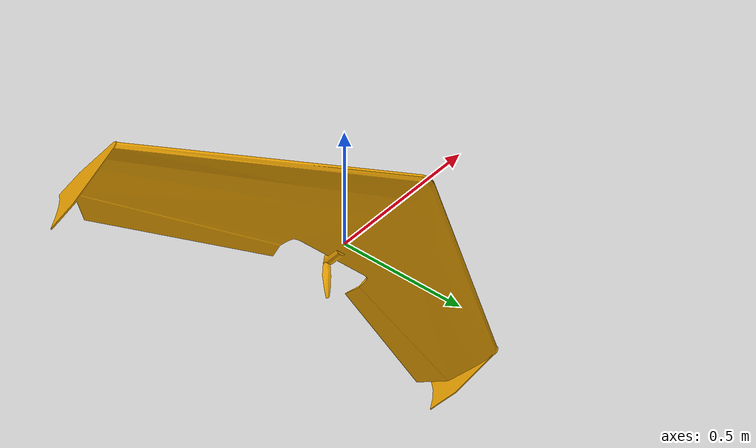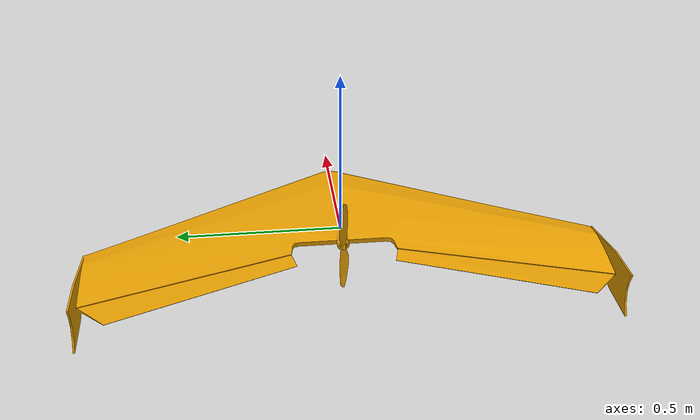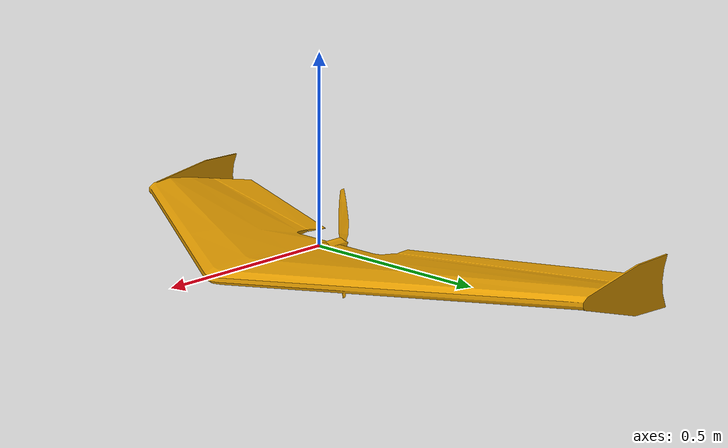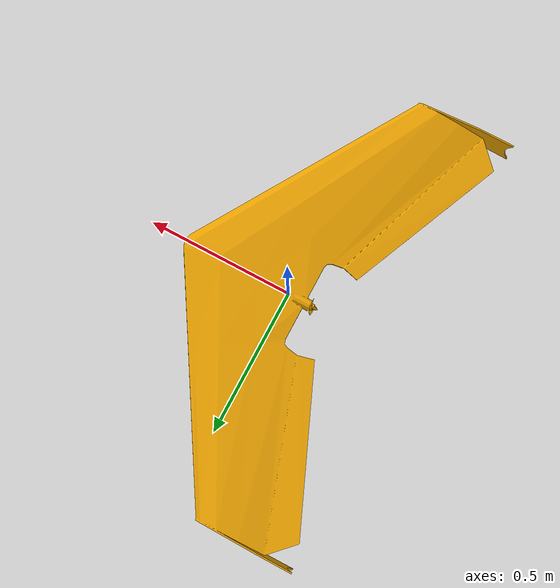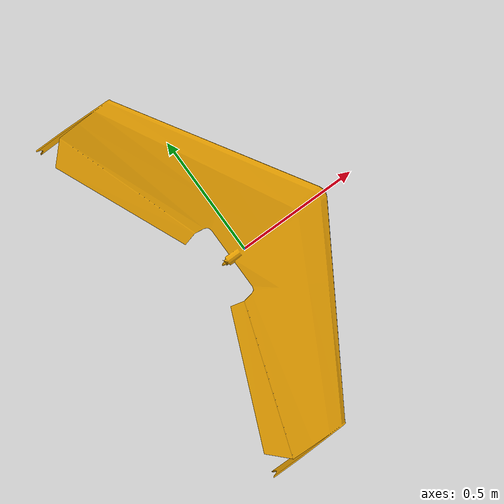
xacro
<?xml version="1.0"?>

<!--

Gazebo Fixedwing Definition File
Author: Gary Ellingson

-->

<robot name="fixedwing" xmlns:xacro="http://ros.org/wiki/xacro">
  <!-- Properties -->
  <xacro:property name="namespace" value="fixedwing"/>
  <xacro:property name="wind_speed_topic" value="gazebo/wind_speed"/>
  <xacro:property name="use_mesh_file" value="true" />
  <xacro:property name="mesh_file" value="model://zephyr_delta_wing/meshes/wing.dae"/>
  <xacro:property name="body_width" value="1.4"/>
  <xacro:property name="body_height" value="1.0" />
  <xacro:property name="body_length" value="1.6"/>
  <xacro:property name="mass" value="1.5"/>
  <xacro:property name="Jx" value="0.1147"/>
  <xacro:property name="Jy" value="0.0576"/>
  <xacro:property name="Jz" value="0.1712"/>
  <xacro:property name="Jxz" value="0.0015"/>

  <!-- Property Blocks -->
  <xacro:property name="empty_inertia">
    <inertia ixx="0.0001" ixy="0.0" ixz="0.0" iyy="0.0001" iyz="0.0" izz="0.001" />
  </xacro:property>

  <!-- Instantiate Link and Visual -->
  <link name="${namespace}/base_link">
    <inertial>
      <mass value="${mass}" />
      <origin xyz="0 0 0" />
      <inertia ixx="${Jx}" ixy="0.00" ixz="${Jxz}" iyy="${Jy}" iyz="0.00" izz="${Jz}" />
    </inertial>
    <visual name="plane_visual">
      <origin xyz="0 0 0" rpy="0 0 1.570796" />
      <geometry>
        <xacro:if value="${use_mesh_file}">
          <mesh filename="${mesh_file}" scale="1 1 1" />
        </xacro:if>
        <xacro:unless value="${use_mesh_file}">
            <box size="${body_width} ${body_height} ${body_length}" />
        </xacro:unless>
      </geometry>
    </visual>
    <collision name="plane_collision">
      <origin xyz="0 0 0" rpy="1.570796 0 1.570796" />
      <geometry>
        <box size="${body_width} ${body_height} ${body_length}" />
      </geometry>
    </collision>

  </link>

  <!-- ROSflight_sill -->
  <xacro:include filename="$(find rosflight_sim)/xacro/ROSflight_SIL.xacro"/>
  <xacro:generic_fixedwing
    namespace="${namespace}"
    parent_link="${namespace}/base_link"/>

</robot>
